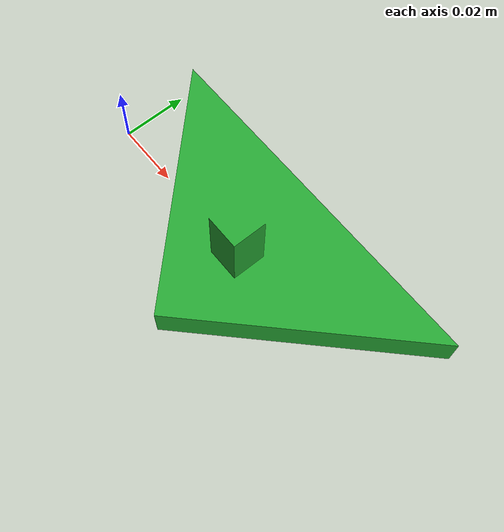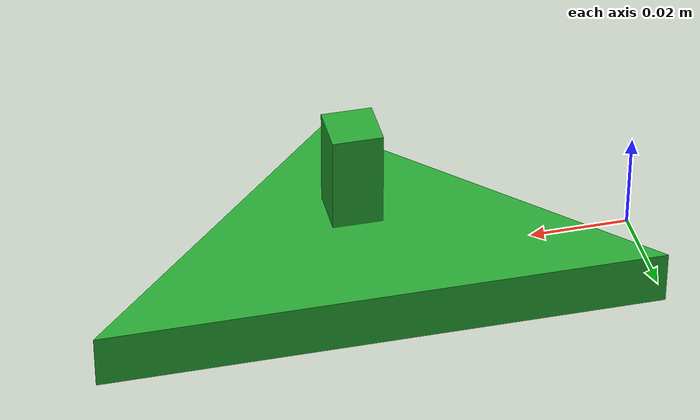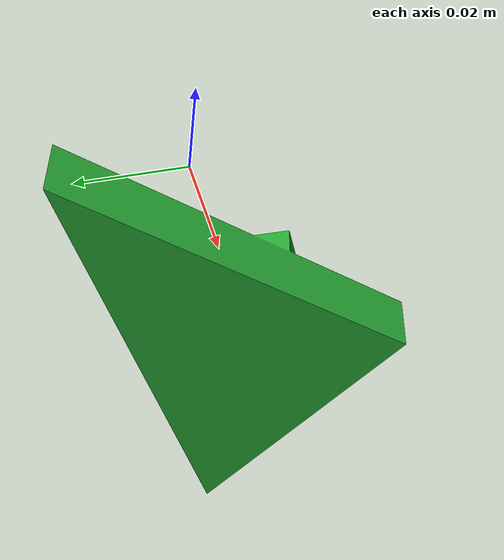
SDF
<?xml version='1.0'?>
<sdf version='1.7'>
  <model name='tangram_4'>
    <link name='tangram_4'>
      <inertial>
        <!--NOTE: Uses Polyethylene density to calculate the mass
        see https://en.wikipedia.org/wiki/Polyethylene
        -->
        <mass>0.00002</mass>
        <inertia  ixx="0.006764475707980556" ixy="0" ixz="0" iyy="0.022252902831922224" iyz="0" izz="0.025814045206569443" />
      </inertial>
      <visual name='visual'>
        <geometry>
          <mesh>
            <uri>model://tangram_4/C1x2_coordinate_fixedv1.stl</uri>
            <scale>0.0001 0.0001 0.0001</scale>
          </mesh>
        </geometry>
        <material>
          <script>
            <uri>file://media/materials/scripts/gazebo.material</uri>
            <name>Gazebo/Green</name>
          </script>
          <shader type='pixel'/>
        </material>
      </visual>
      <collision name='collision'>
        <geometry>
          <mesh>
            <uri>model://tangram_4/C1x2_coordinate_fixedv1.stl</uri>
            <scale>0.0001 0.0001 0.0001</scale>
          </mesh>
        </geometry>
        <surface>
          <!--NOTE: Uses dynamic friction of brick on a wood surface
          see https://www.engineeringtoolbox.com/friction-coefficients-d_778.html
          -->
          <friction>
            <ode>
              <mu>0.60</mu>
              <mu2>0.60</mu2>
              <fdir1>0 0 0</fdir1>
              <slip1>0</slip1>
              <slip2>0</slip2>
            </ode>
            <torsional>
              <coefficient>1</coefficient>
              <patch_radius>0</patch_radius>
              <surface_radius>0</surface_radius>
              <use_patch_radius>1</use_patch_radius>
              <ode>
                <slip>0</slip>
              </ode>
            </torsional>
          </friction>
          <bounce>
            <restitution_coefficient>0</restitution_coefficient>
            <threshold>1e+06</threshold>
          </bounce>
          <contact>
            <collide_without_contact>0</collide_without_contact>
            <collide_without_contact_bitmask>1</collide_without_contact_bitmask>
            <collide_bitmask>1</collide_bitmask>
            <ode>
              <soft_cfm>0</soft_cfm>
              <soft_erp>0.2</soft_erp>
              <kp>1e+13</kp>
              <kd>1</kd>
              <max_vel>0</max_vel>
              <min_depth>0.003</min_depth>
            </ode>
            <bullet>
              <split_impulse>1</split_impulse>
              <split_impulse_penetration_threshold>-0.01</split_impulse_penetration_threshold>
              <soft_cfm>0</soft_cfm>
              <soft_erp>0.2</soft_erp>
              <kp>1e+13</kp>
              <kd>1</kd>
            </bullet>
          </contact>
        </surface>
      </collision>
    </link>
  </model>
</sdf>
